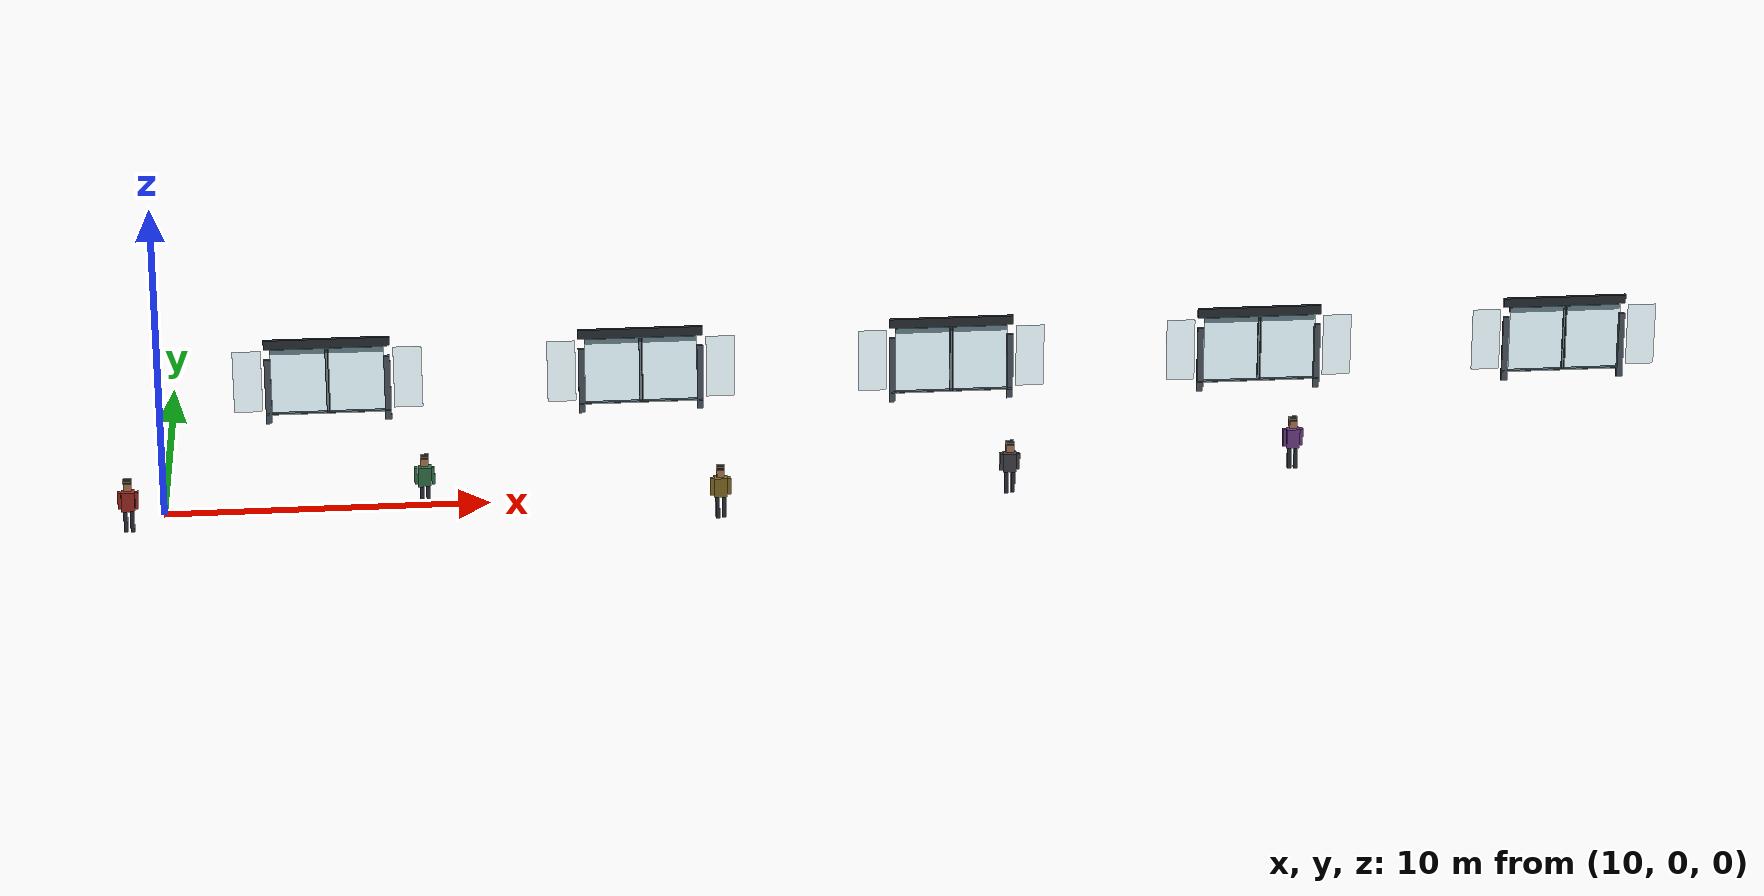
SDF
<sdf version="1.8">
 <world name="metro_station">
  <model name="psd_unit_08">
   <static>true</static>
   <pose>15.0 0 0 0 0 0</pose>
   <link name="psd_frame_08">
    <collision name="psd_post_left_col_08">
     <pose>-1.90 7.02 1.10 0 0 0</pose>
     <geometry><box><size>0.20 0.10 2.20</size></box></geometry>
    </collision>
    <collision name="psd_post_right_col_08">
     <pose>1.90 7.02 1.10 0 0 0</pose>
     <geometry><box><size>0.20 0.10 2.20</size></box></geometry>
    </collision>
    <collision name="psd_header_col_08">
     <pose>0 7.02 2.70 0 0 0</pose>
     <geometry><box><size>4.00 0.10 0.30</size></box></geometry>
    </collision>
    <collision name="psd_threshold_col_08">
     <pose>0 7.02 0.325 0 0 0</pose>
     <geometry><box><size>4.00 0.10 0.05</size></box></geometry>
    </collision>
    <visual name="psd_post_left_vis_08">
     <pose>-1.90 7.02 1.10 0 0 0</pose>
     <geometry><box><size>0.20 0.10 2.20</size></box></geometry>
     <material>
      <ambient>0.22 0.25 0.28 1</ambient>
      <diffuse>0.30 0.34 0.38 1</diffuse>
      <specular>0.35 0.35 0.35 1</specular>
     </material>
    </visual>
    <visual name="psd_post_right_vis_08">
     <pose>1.90 7.02 1.10 0 0 0</pose>
     <geometry><box><size>0.20 0.10 2.20</size></box></geometry>
     <material>
      <ambient>0.22 0.25 0.28 1</ambient>
      <diffuse>0.30 0.34 0.38 1</diffuse>
      <specular>0.35 0.35 0.35 1</specular>
     </material>
    </visual>
    <visual name="psd_header_vis_08">
     <pose>0 7.02 2.70 0 0 0</pose>
     <geometry><box><size>4.00 0.10 0.30</size></box></geometry>
     <material><ambient>0.10 0.12 0.14 1</ambient><diffuse>0.16 0.18 0.20 1</diffuse></material>
    </visual>
    <visual name="psd_threshold_vis_08">
     <pose>0 7.02 0.325 0 0 0</pose>
     <geometry><box><size>4.00 0.10 0.05</size></box></geometry>
     <material>
      <ambient>0.22 0.25 0.28 1</ambient>
      <diffuse>0.30 0.34 0.38 1</diffuse>
      <specular>0.35 0.35 0.35 1</specular>
     </material>
    </visual>
    <visual name="psd_glass_left_vis_08">
     <pose>-2.55 7.02 1.45 0 0 0</pose>
     <transparency>0.65</transparency>
     <geometry><box><size>0.90 0.05 2.05</size></box></geometry>
     <material><ambient>0.55 0.75 0.82 1</ambient><diffuse>0.65 0.85 0.92 1</diffuse></material>
    </visual>
    <visual name="psd_glass_right_vis_08">
     <pose>2.55 7.02 1.45 0 0 0</pose>
     <transparency>0.65</transparency>
     <geometry><box><size>0.90 0.05 2.05</size></box></geometry>
     <material><ambient>0.55 0.75 0.82 1</ambient><diffuse>0.65 0.85 0.92 1</diffuse></material>
    </visual>
    <visual name="psd_unit_label_vis_08">
     <pose>0 7.10 2.70 0 0 0</pose>
     <geometry><box><size>0.30 0.02 0.16</size></box></geometry>
     <material>
      <ambient>0.95 0.72 0.04 1</ambient>
      <diffuse>0.98 0.78 0.08 1</diffuse>
      <emissive>0.35 0.25 0.02 1</emissive>
     </material>
    </visual>
    <visual name="psd_upper_panel_vis_08">
     <pose>0 7.02 2.46 0 0 0</pose>
     <geometry><box><size>3.60 0.06 0.18</size></box></geometry>
     <material>
      <ambient>0.22 0.25 0.28 1</ambient>
      <diffuse>0.30 0.34 0.38 1</diffuse>
      <specular>0.35 0.35 0.35 1</specular>
     </material>
    </visual>
   </link>
  </model>
  <model name="psd_unit_09">
   <static>true</static>
   <pose>25.0 0 0 0 0 0</pose>
   <link name="psd_frame_09">
    <collision name="psd_post_left_col_09">
     <pose>-1.90 7.02 1.10 0 0 0</pose>
     <geometry><box><size>0.20 0.10 2.20</size></box></geometry>
    </collision>
    <collision name="psd_post_right_col_09">
     <pose>1.90 7.02 1.10 0 0 0</pose>
     <geometry><box><size>0.20 0.10 2.20</size></box></geometry>
    </collision>
    <collision name="psd_header_col_09">
     <pose>0 7.02 2.70 0 0 0</pose>
     <geometry><box><size>4.00 0.10 0.30</size></box></geometry>
    </collision>
    <collision name="psd_threshold_col_09">
     <pose>0 7.02 0.325 0 0 0</pose>
     <geometry><box><size>4.00 0.10 0.05</size></box></geometry>
    </collision>
    <visual name="psd_post_left_vis_09">
     <pose>-1.90 7.02 1.10 0 0 0</pose>
     <geometry><box><size>0.20 0.10 2.20</size></box></geometry>
     <material>
      <ambient>0.22 0.25 0.28 1</ambient>
      <diffuse>0.30 0.34 0.38 1</diffuse>
      <specular>0.35 0.35 0.35 1</specular>
     </material>
    </visual>
    <visual name="psd_post_right_vis_09">
     <pose>1.90 7.02 1.10 0 0 0</pose>
     <geometry><box><size>0.20 0.10 2.20</size></box></geometry>
     <material>
      <ambient>0.22 0.25 0.28 1</ambient>
      <diffuse>0.30 0.34 0.38 1</diffuse>
      <specular>0.35 0.35 0.35 1</specular>
     </material>
    </visual>
    <visual name="psd_header_vis_09">
     <pose>0 7.02 2.70 0 0 0</pose>
     <geometry><box><size>4.00 0.10 0.30</size></box></geometry>
     <material><ambient>0.10 0.12 0.14 1</ambient><diffuse>0.16 0.18 0.20 1</diffuse></material>
    </visual>
    <visual name="psd_threshold_vis_09">
     <pose>0 7.02 0.325 0 0 0</pose>
     <geometry><box><size>4.00 0.10 0.05</size></box></geometry>
     <material>
      <ambient>0.22 0.25 0.28 1</ambient>
      <diffuse>0.30 0.34 0.38 1</diffuse>
      <specular>0.35 0.35 0.35 1</specular>
     </material>
    </visual>
    <visual name="psd_glass_left_vis_09">
     <pose>-2.55 7.02 1.45 0 0 0</pose>
     <transparency>0.65</transparency>
     <geometry><box><size>0.90 0.05 2.05</size></box></geometry>
     <material><ambient>0.55 0.75 0.82 1</ambient><diffuse>0.65 0.85 0.92 1</diffuse></material>
    </visual>
    <visual name="psd_glass_right_vis_09">
     <pose>2.55 7.02 1.45 0 0 0</pose>
     <transparency>0.65</transparency>
     <geometry><box><size>0.90 0.05 2.05</size></box></geometry>
     <material><ambient>0.55 0.75 0.82 1</ambient><diffuse>0.65 0.85 0.92 1</diffuse></material>
    </visual>
    <visual name="psd_unit_label_vis_09">
     <pose>0 7.10 2.70 0 0 0</pose>
     <geometry><box><size>0.30 0.02 0.16</size></box></geometry>
     <material>
      <ambient>0.95 0.72 0.04 1</ambient>
      <diffuse>0.98 0.78 0.08 1</diffuse>
      <emissive>0.35 0.25 0.02 1</emissive>
     </material>
    </visual>
    <visual name="psd_upper_panel_vis_09">
     <pose>0 7.02 2.46 0 0 0</pose>
     <geometry><box><size>3.60 0.06 0.18</size></box></geometry>
     <material>
      <ambient>0.22 0.25 0.28 1</ambient>
      <diffuse>0.30 0.34 0.38 1</diffuse>
      <specular>0.35 0.35 0.35 1</specular>
     </material>
    </visual>
   </link>
  </model>
  <model name="psd_unit_10">
   <static>true</static>
   <pose>35.0 0 0 0 0 0</pose>
   <link name="psd_frame_10">
    <collision name="psd_post_left_col_10">
     <pose>-1.90 7.02 1.10 0 0 0</pose>
     <geometry><box><size>0.20 0.10 2.20</size></box></geometry>
    </collision>
    <collision name="psd_post_right_col_10">
     <pose>1.90 7.02 1.10 0 0 0</pose>
     <geometry><box><size>0.20 0.10 2.20</size></box></geometry>
    </collision>
    <collision name="psd_header_col_10">
     <pose>0 7.02 2.70 0 0 0</pose>
     <geometry><box><size>4.00 0.10 0.30</size></box></geometry>
    </collision>
    <collision name="psd_threshold_col_10">
     <pose>0 7.02 0.325 0 0 0</pose>
     <geometry><box><size>4.00 0.10 0.05</size></box></geometry>
    </collision>
    <visual name="psd_post_left_vis_10">
     <pose>-1.90 7.02 1.10 0 0 0</pose>
     <geometry><box><size>0.20 0.10 2.20</size></box></geometry>
     <material>
      <ambient>0.22 0.25 0.28 1</ambient>
      <diffuse>0.30 0.34 0.38 1</diffuse>
      <specular>0.35 0.35 0.35 1</specular>
     </material>
    </visual>
    <visual name="psd_post_right_vis_10">
     <pose>1.90 7.02 1.10 0 0 0</pose>
     <geometry><box><size>0.20 0.10 2.20</size></box></geometry>
     <material>
      <ambient>0.22 0.25 0.28 1</ambient>
      <diffuse>0.30 0.34 0.38 1</diffuse>
      <specular>0.35 0.35 0.35 1</specular>
     </material>
    </visual>
    <visual name="psd_header_vis_10">
     <pose>0 7.02 2.70 0 0 0</pose>
     <geometry><box><size>4.00 0.10 0.30</size></box></geometry>
     <material><ambient>0.10 0.12 0.14 1</ambient><diffuse>0.16 0.18 0.20 1</diffuse></material>
    </visual>
    <visual name="psd_threshold_vis_10">
     <pose>0 7.02 0.325 0 0 0</pose>
     <geometry><box><size>4.00 0.10 0.05</size></box></geometry>
     <material>
      <ambient>0.22 0.25 0.28 1</ambient>
      <diffuse>0.30 0.34 0.38 1</diffuse>
      <specular>0.35 0.35 0.35 1</specular>
     </material>
    </visual>
    <visual name="psd_glass_left_vis_10">
     <pose>-2.55 7.02 1.45 0 0 0</pose>
     <transparency>0.65</transparency>
     <geometry><box><size>0.90 0.05 2.05</size></box></geometry>
     <material><ambient>0.55 0.75 0.82 1</ambient><diffuse>0.65 0.85 0.92 1</diffuse></material>
    </visual>
    <visual name="psd_glass_right_vis_10">
     <pose>2.55 7.02 1.45 0 0 0</pose>
     <transparency>0.65</transparency>
     <geometry><box><size>0.90 0.05 2.05</size></box></geometry>
     <material><ambient>0.55 0.75 0.82 1</ambient><diffuse>0.65 0.85 0.92 1</diffuse></material>
    </visual>
    <visual name="psd_unit_label_vis_10">
     <pose>0 7.10 2.70 0 0 0</pose>
     <geometry><box><size>0.30 0.02 0.16</size></box></geometry>
     <material>
      <ambient>0.95 0.72 0.04 1</ambient>
      <diffuse>0.98 0.78 0.08 1</diffuse>
      <emissive>0.35 0.25 0.02 1</emissive>
     </material>
    </visual>
    <visual name="psd_upper_panel_vis_10">
     <pose>0 7.02 2.46 0 0 0</pose>
     <geometry><box><size>3.60 0.06 0.18</size></box></geometry>
     <material>
      <ambient>0.22 0.25 0.28 1</ambient>
      <diffuse>0.30 0.34 0.38 1</diffuse>
      <specular>0.35 0.35 0.35 1</specular>
     </material>
    </visual>
   </link>
  </model>
  <model name="psd_unit_11">
   <static>true</static>
   <pose>45.0 0 0 0 0 0</pose>
   <link name="psd_frame_11">
    <collision name="psd_post_left_col_11">
     <pose>-1.90 7.02 1.10 0 0 0</pose>
     <geometry><box><size>0.20 0.10 2.20</size></box></geometry>
    </collision>
    <collision name="psd_post_right_col_11">
     <pose>1.90 7.02 1.10 0 0 0</pose>
     <geometry><box><size>0.20 0.10 2.20</size></box></geometry>
    </collision>
    <collision name="psd_header_col_11">
     <pose>0 7.02 2.70 0 0 0</pose>
     <geometry><box><size>4.00 0.10 0.30</size></box></geometry>
    </collision>
    <collision name="psd_threshold_col_11">
     <pose>0 7.02 0.325 0 0 0</pose>
     <geometry><box><size>4.00 0.10 0.05</size></box></geometry>
    </collision>
    <visual name="psd_post_left_vis_11">
     <pose>-1.90 7.02 1.10 0 0 0</pose>
     <geometry><box><size>0.20 0.10 2.20</size></box></geometry>
     <material>
      <ambient>0.22 0.25 0.28 1</ambient>
      <diffuse>0.30 0.34 0.38 1</diffuse>
      <specular>0.35 0.35 0.35 1</specular>
     </material>
    </visual>
    <visual name="psd_post_right_vis_11">
     <pose>1.90 7.02 1.10 0 0 0</pose>
     <geometry><box><size>0.20 0.10 2.20</size></box></geometry>
     <material>
      <ambient>0.22 0.25 0.28 1</ambient>
      <diffuse>0.30 0.34 0.38 1</diffuse>
      <specular>0.35 0.35 0.35 1</specular>
     </material>
    </visual>
    <visual name="psd_header_vis_11">
     <pose>0 7.02 2.70 0 0 0</pose>
     <geometry><box><size>4.00 0.10 0.30</size></box></geometry>
     <material><ambient>0.10 0.12 0.14 1</ambient><diffuse>0.16 0.18 0.20 1</diffuse></material>
    </visual>
    <visual name="psd_threshold_vis_11">
     <pose>0 7.02 0.325 0 0 0</pose>
     <geometry><box><size>4.00 0.10 0.05</size></box></geometry>
     <material>
      <ambient>0.22 0.25 0.28 1</ambient>
      <diffuse>0.30 0.34 0.38 1</diffuse>
      <specular>0.35 0.35 0.35 1</specular>
     </material>
    </visual>
    <visual name="psd_glass_left_vis_11">
     <pose>-2.55 7.02 1.45 0 0 0</pose>
     <transparency>0.65</transparency>
     <geometry><box><size>0.90 0.05 2.05</size></box></geometry>
     <material><ambient>0.55 0.75 0.82 1</ambient><diffuse>0.65 0.85 0.92 1</diffuse></material>
    </visual>
    <visual name="psd_glass_right_vis_11">
     <pose>2.55 7.02 1.45 0 0 0</pose>
     <transparency>0.65</transparency>
     <geometry><box><size>0.90 0.05 2.05</size></box></geometry>
     <material><ambient>0.55 0.75 0.82 1</ambient><diffuse>0.65 0.85 0.92 1</diffuse></material>
    </visual>
    <visual name="psd_unit_label_vis_11">
     <pose>0 7.10 2.70 0 0 0</pose>
     <geometry><box><size>0.30 0.02 0.16</size></box></geometry>
     <material>
      <ambient>0.95 0.72 0.04 1</ambient>
      <diffuse>0.98 0.78 0.08 1</diffuse>
      <emissive>0.35 0.25 0.02 1</emissive>
     </material>
    </visual>
    <visual name="psd_upper_panel_vis_11">
     <pose>0 7.02 2.46 0 0 0</pose>
     <geometry><box><size>3.60 0.06 0.18</size></box></geometry>
     <material>
      <ambient>0.22 0.25 0.28 1</ambient>
      <diffuse>0.30 0.34 0.38 1</diffuse>
      <specular>0.35 0.35 0.35 1</specular>
     </material>
    </visual>
   </link>
  </model>
  <model name="psd_unit_12">
   <static>true</static>
   <pose>55.0 0 0 0 0 0</pose>
   <link name="psd_frame_12">
    <collision name="psd_post_left_col_12">
     <pose>-1.90 7.02 1.10 0 0 0</pose>
     <geometry><box><size>0.20 0.10 2.20</size></box></geometry>
    </collision>
    <collision name="psd_post_right_col_12">
     <pose>1.90 7.02 1.10 0 0 0</pose>
     <geometry><box><size>0.20 0.10 2.20</size></box></geometry>
    </collision>
    <collision name="psd_header_col_12">
     <pose>0 7.02 2.70 0 0 0</pose>
     <geometry><box><size>4.00 0.10 0.30</size></box></geometry>
    </collision>
    <collision name="psd_threshold_col_12">
     <pose>0 7.02 0.325 0 0 0</pose>
     <geometry><box><size>4.00 0.10 0.05</size></box></geometry>
    </collision>
    <visual name="psd_post_left_vis_12">
     <pose>-1.90 7.02 1.10 0 0 0</pose>
     <geometry><box><size>0.20 0.10 2.20</size></box></geometry>
     <material>
      <ambient>0.22 0.25 0.28 1</ambient>
      <diffuse>0.30 0.34 0.38 1</diffuse>
      <specular>0.35 0.35 0.35 1</specular>
     </material>
    </visual>
    <visual name="psd_post_right_vis_12">
     <pose>1.90 7.02 1.10 0 0 0</pose>
     <geometry><box><size>0.20 0.10 2.20</size></box></geometry>
     <material>
      <ambient>0.22 0.25 0.28 1</ambient>
      <diffuse>0.30 0.34 0.38 1</diffuse>
      <specular>0.35 0.35 0.35 1</specular>
     </material>
    </visual>
    <visual name="psd_header_vis_12">
     <pose>0 7.02 2.70 0 0 0</pose>
     <geometry><box><size>4.00 0.10 0.30</size></box></geometry>
     <material><ambient>0.10 0.12 0.14 1</ambient><diffuse>0.16 0.18 0.20 1</diffuse></material>
    </visual>
    <visual name="psd_threshold_vis_12">
     <pose>0 7.02 0.325 0 0 0</pose>
     <geometry><box><size>4.00 0.10 0.05</size></box></geometry>
     <material>
      <ambient>0.22 0.25 0.28 1</ambient>
      <diffuse>0.30 0.34 0.38 1</diffuse>
      <specular>0.35 0.35 0.35 1</specular>
     </material>
    </visual>
    <visual name="psd_glass_left_vis_12">
     <pose>-2.55 7.02 1.45 0 0 0</pose>
     <transparency>0.65</transparency>
     <geometry><box><size>0.90 0.05 2.05</size></box></geometry>
     <material><ambient>0.55 0.75 0.82 1</ambient><diffuse>0.65 0.85 0.92 1</diffuse></material>
    </visual>
    <visual name="psd_glass_right_vis_12">
     <pose>2.55 7.02 1.45 0 0 0</pose>
     <transparency>0.65</transparency>
     <geometry><box><size>0.90 0.05 2.05</size></box></geometry>
     <material><ambient>0.55 0.75 0.82 1</ambient><diffuse>0.65 0.85 0.92 1</diffuse></material>
    </visual>
    <visual name="psd_unit_label_vis_12">
     <pose>0 7.10 2.70 0 0 0</pose>
     <geometry><box><size>0.30 0.02 0.16</size></box></geometry>
     <material>
      <ambient>0.95 0.72 0.04 1</ambient>
      <diffuse>0.98 0.78 0.08 1</diffuse>
      <emissive>0.35 0.25 0.02 1</emissive>
     </material>
    </visual>
    <visual name="psd_upper_panel_vis_12">
     <pose>0 7.02 2.46 0 0 0</pose>
     <geometry><box><size>3.60 0.06 0.18</size></box></geometry>
     <material>
      <ambient>0.22 0.25 0.28 1</ambient>
      <diffuse>0.30 0.34 0.38 1</diffuse>
      <specular>0.35 0.35 0.35 1</specular>
     </material>
    </visual>
   </link>
  </model>
  <model name="psd_door_08">
   <static>false</static>
   <allow_auto_disable>false</allow_auto_disable>
   <pose>15.0 0 0 0 0 0</pose>
   <link name="psd_base_08">
    <inertial>
     <mass>1.0</mass>
     <inertia><ixx>0.001</ixx><ixy>0</ixy><ixz>0</ixz><iyy>0.001</iyy><iyz>0</iyz><izz>0.001</izz></inertia>
    </inertial>
   </link>
   <link name="psd_left_08">
    <pose>-0.90 6.90 1.45 0 0 0</pose>
    <inertial>
     <mass>120.0</mass>
     <inertia><ixx>48.436</ixx><ixy>0</ixy><ixz>0</ixz><iyy>80.800</iyy><iyz>0</iyz><izz>32.436</izz></inertia>
    </inertial>
    <collision name="psd_left_col_08"><geometry><box><size>1.80 0.06 2.20</size></box></geometry></collision>
    <visual name="psd_left_vis_08">
     <transparency>0.6</transparency>
     <geometry><box><size>1.80 0.06 2.20</size></box></geometry>
     <material><ambient>0.55 0.78 0.85 1</ambient><diffuse>0.65 0.88 0.95 1</diffuse></material>
    </visual>
    <visual name="psd_left_edge_vis_08">
     <pose>0.86 0 0 0 0 0</pose>
     <geometry><box><size>0.03 0.08 2.20</size></box></geometry>
     <material><ambient>0.15 0.18 0.20 1</ambient><diffuse>0.22 0.25 0.28 1</diffuse></material>
    </visual>
   </link>
   <link name="psd_right_08">
    <pose>0.90 6.90 1.45 0 0 0</pose>
    <inertial>
     <mass>120.0</mass>
     <inertia><ixx>48.436</ixx><ixy>0</ixy><ixz>0</ixz><iyy>80.800</iyy><iyz>0</iyz><izz>32.436</izz></inertia>
    </inertial>
    <collision name="psd_right_col_08"><geometry><box><size>1.80 0.06 2.20</size></box></geometry></collision>
    <visual name="psd_right_vis_08">
     <transparency>0.6</transparency>
     <geometry><box><size>1.80 0.06 2.20</size></box></geometry>
     <material><ambient>0.55 0.78 0.85 1</ambient><diffuse>0.65 0.88 0.95 1</diffuse></material>
    </visual>
    <visual name="psd_right_edge_vis_08">
     <pose>-0.86 0 0 0 0 0</pose>
     <geometry><box><size>0.03 0.08 2.20</size></box></geometry>
     <material><ambient>0.15 0.18 0.20 1</ambient><diffuse>0.22 0.25 0.28 1</diffuse></material>
    </visual>
   </link>
   <joint name="psd_base_fixed_08" type="fixed"><parent>world</parent><child>psd_base_08</child></joint>
   <joint name="psd_left_joint_08" type="prismatic">
    <parent>psd_base_08</parent>
    <child>psd_left_08</child>
    <axis>
     <xyz>1 0 0</xyz>
     <limit><lower>-1.80</lower><upper>0.0</upper><effort>5000.0</effort><velocity>1.0</velocity></limit>
     <dynamics><damping>2.0</damping><friction>0.2</friction></dynamics>
    </axis>
   </joint>
   <joint name="psd_right_joint_08" type="prismatic">
    <parent>psd_base_08</parent>
    <child>psd_right_08</child>
    <axis>
     <xyz>1 0 0</xyz>
     <limit><lower>0.0</lower><upper>1.80</upper><effort>5000.0</effort><velocity>1.0</velocity></limit>
     <dynamics><damping>2.0</damping><friction>0.2</friction></dynamics>
    </axis>
   </joint>
  </model>
  <model name="psd_door_09">
   <static>false</static>
   <allow_auto_disable>false</allow_auto_disable>
   <pose>25.0 0 0 0 0 0</pose>
   <link name="psd_base_09">
    <inertial>
     <mass>1.0</mass>
     <inertia><ixx>0.001</ixx><ixy>0</ixy><ixz>0</ixz><iyy>0.001</iyy><iyz>0</iyz><izz>0.001</izz></inertia>
    </inertial>
   </link>
   <link name="psd_left_09">
    <pose>-0.90 6.90 1.45 0 0 0</pose>
    <inertial>
     <mass>120.0</mass>
     <inertia><ixx>48.436</ixx><ixy>0</ixy><ixz>0</ixz><iyy>80.800</iyy><iyz>0</iyz><izz>32.436</izz></inertia>
    </inertial>
    <collision name="psd_left_col_09"><geometry><box><size>1.80 0.06 2.20</size></box></geometry></collision>
    <visual name="psd_left_vis_09">
     <transparency>0.6</transparency>
     <geometry><box><size>1.80 0.06 2.20</size></box></geometry>
     <material><ambient>0.55 0.78 0.85 1</ambient><diffuse>0.65 0.88 0.95 1</diffuse></material>
    </visual>
    <visual name="psd_left_edge_vis_09">
     <pose>0.86 0 0 0 0 0</pose>
     <geometry><box><size>0.03 0.08 2.20</size></box></geometry>
     <material><ambient>0.15 0.18 0.20 1</ambient><diffuse>0.22 0.25 0.28 1</diffuse></material>
    </visual>
   </link>
   <link name="psd_right_09">
    <pose>0.90 6.90 1.45 0 0 0</pose>
    <inertial>
     <mass>120.0</mass>
     <inertia><ixx>48.436</ixx><ixy>0</ixy><ixz>0</ixz><iyy>80.800</iyy><iyz>0</iyz><izz>32.436</izz></inertia>
    </inertial>
    <collision name="psd_right_col_09"><geometry><box><size>1.80 0.06 2.20</size></box></geometry></collision>
    <visual name="psd_right_vis_09">
     <transparency>0.6</transparency>
     <geometry><box><size>1.80 0.06 2.20</size></box></geometry>
     <material><ambient>0.55 0.78 0.85 1</ambient><diffuse>0.65 0.88 0.95 1</diffuse></material>
    </visual>
    <visual name="psd_right_edge_vis_09">
     <pose>-0.86 0 0 0 0 0</pose>
     <geometry><box><size>0.03 0.08 2.20</size></box></geometry>
     <material><ambient>0.15 0.18 0.20 1</ambient><diffuse>0.22 0.25 0.28 1</diffuse></material>
    </visual>
   </link>
   <joint name="psd_base_fixed_09" type="fixed"><parent>world</parent><child>psd_base_09</child></joint>
   <joint name="psd_left_joint_09" type="prismatic">
    <parent>psd_base_09</parent>
    <child>psd_left_09</child>
    <axis>
     <xyz>1 0 0</xyz>
     <limit><lower>-1.80</lower><upper>0.0</upper><effort>5000.0</effort><velocity>1.0</velocity></limit>
     <dynamics><damping>2.0</damping><friction>0.2</friction></dynamics>
    </axis>
   </joint>
   <joint name="psd_right_joint_09" type="prismatic">
    <parent>psd_base_09</parent>
    <child>psd_right_09</child>
    <axis>
     <xyz>1 0 0</xyz>
     <limit><lower>0.0</lower><upper>1.80</upper><effort>5000.0</effort><velocity>1.0</velocity></limit>
     <dynamics><damping>2.0</damping><friction>0.2</friction></dynamics>
    </axis>
   </joint>
  </model>
  <model name="psd_door_10">
   <static>false</static>
   <allow_auto_disable>false</allow_auto_disable>
   <pose>35.0 0 0 0 0 0</pose>
   <link name="psd_base_10">
    <inertial>
     <mass>1.0</mass>
     <inertia><ixx>0.001</ixx><ixy>0</ixy><ixz>0</ixz><iyy>0.001</iyy><iyz>0</iyz><izz>0.001</izz></inertia>
    </inertial>
   </link>
   <link name="psd_left_10">
    <pose>-0.90 6.90 1.45 0 0 0</pose>
    <inertial>
     <mass>120.0</mass>
     <inertia><ixx>48.436</ixx><ixy>0</ixy><ixz>0</ixz><iyy>80.800</iyy><iyz>0</iyz><izz>32.436</izz></inertia>
    </inertial>
    <collision name="psd_left_col_10"><geometry><box><size>1.80 0.06 2.20</size></box></geometry></collision>
    <visual name="psd_left_vis_10">
     <transparency>0.6</transparency>
     <geometry><box><size>1.80 0.06 2.20</size></box></geometry>
     <material><ambient>0.55 0.78 0.85 1</ambient><diffuse>0.65 0.88 0.95 1</diffuse></material>
    </visual>
    <visual name="psd_left_edge_vis_10">
     <pose>0.86 0 0 0 0 0</pose>
     <geometry><box><size>0.03 0.08 2.20</size></box></geometry>
     <material><ambient>0.15 0.18 0.20 1</ambient><diffuse>0.22 0.25 0.28 1</diffuse></material>
    </visual>
   </link>
   <link name="psd_right_10">
    <pose>0.90 6.90 1.45 0 0 0</pose>
    <inertial>
     <mass>120.0</mass>
     <inertia><ixx>48.436</ixx><ixy>0</ixy><ixz>0</ixz><iyy>80.800</iyy><iyz>0</iyz><izz>32.436</izz></inertia>
    </inertial>
    <collision name="psd_right_col_10"><geometry><box><size>1.80 0.06 2.20</size></box></geometry></collision>
    <visual name="psd_right_vis_10">
     <transparency>0.6</transparency>
     <geometry><box><size>1.80 0.06 2.20</size></box></geometry>
     <material><ambient>0.55 0.78 0.85 1</ambient><diffuse>0.65 0.88 0.95 1</diffuse></material>
    </visual>
    <visual name="psd_right_edge_vis_10">
     <pose>-0.86 0 0 0 0 0</pose>
     <geometry><box><size>0.03 0.08 2.20</size></box></geometry>
     <material><ambient>0.15 0.18 0.20 1</ambient><diffuse>0.22 0.25 0.28 1</diffuse></material>
    </visual>
   </link>
   <joint name="psd_base_fixed_10" type="fixed"><parent>world</parent><child>psd_base_10</child></joint>
   <joint name="psd_left_joint_10" type="prismatic">
    <parent>psd_base_10</parent>
    <child>psd_left_10</child>
    <axis>
     <xyz>1 0 0</xyz>
     <limit><lower>-1.80</lower><upper>0.0</upper><effort>5000.0</effort><velocity>1.0</velocity></limit>
     <dynamics><damping>2.0</damping><friction>0.2</friction></dynamics>
    </axis>
   </joint>
   <joint name="psd_right_joint_10" type="prismatic">
    <parent>psd_base_10</parent>
    <child>psd_right_10</child>
    <axis>
     <xyz>1 0 0</xyz>
     <limit><lower>0.0</lower><upper>1.80</upper><effort>5000.0</effort><velocity>1.0</velocity></limit>
     <dynamics><damping>2.0</damping><friction>0.2</friction></dynamics>
    </axis>
   </joint>
  </model>
  <model name="psd_door_11">
   <static>false</static>
   <allow_auto_disable>false</allow_auto_disable>
   <pose>45.0 0 0 0 0 0</pose>
   <link name="psd_base_11">
    <inertial>
     <mass>1.0</mass>
     <inertia><ixx>0.001</ixx><ixy>0</ixy><ixz>0</ixz><iyy>0.001</iyy><iyz>0</iyz><izz>0.001</izz></inertia>
    </inertial>
   </link>
   <link name="psd_left_11">
    <pose>-0.90 6.90 1.45 0 0 0</pose>
    <inertial>
     <mass>120.0</mass>
     <inertia><ixx>48.436</ixx><ixy>0</ixy><ixz>0</ixz><iyy>80.800</iyy><iyz>0</iyz><izz>32.436</izz></inertia>
    </inertial>
    <collision name="psd_left_col_11"><geometry><box><size>1.80 0.06 2.20</size></box></geometry></collision>
    <visual name="psd_left_vis_11">
     <transparency>0.6</transparency>
     <geometry><box><size>1.80 0.06 2.20</size></box></geometry>
     <material><ambient>0.55 0.78 0.85 1</ambient><diffuse>0.65 0.88 0.95 1</diffuse></material>
    </visual>
    <visual name="psd_left_edge_vis_11">
     <pose>0.86 0 0 0 0 0</pose>
     <geometry><box><size>0.03 0.08 2.20</size></box></geometry>
     <material><ambient>0.15 0.18 0.20 1</ambient><diffuse>0.22 0.25 0.28 1</diffuse></material>
    </visual>
   </link>
   <link name="psd_right_11">
    <pose>0.90 6.90 1.45 0 0 0</pose>
    <inertial>
     <mass>120.0</mass>
     <inertia><ixx>48.436</ixx><ixy>0</ixy><ixz>0</ixz><iyy>80.800</iyy><iyz>0</iyz><izz>32.436</izz></inertia>
    </inertial>
    <collision name="psd_right_col_11"><geometry><box><size>1.80 0.06 2.20</size></box></geometry></collision>
    <visual name="psd_right_vis_11">
     <transparency>0.6</transparency>
     <geometry><box><size>1.80 0.06 2.20</size></box></geometry>
     <material><ambient>0.55 0.78 0.85 1</ambient><diffuse>0.65 0.88 0.95 1</diffuse></material>
    </visual>
    <visual name="psd_right_edge_vis_11">
     <pose>-0.86 0 0 0 0 0</pose>
     <geometry><box><size>0.03 0.08 2.20</size></box></geometry>
     <material><ambient>0.15 0.18 0.20 1</ambient><diffuse>0.22 0.25 0.28 1</diffuse></material>
    </visual>
   </link>
   <joint name="psd_base_fixed_11" type="fixed"><parent>world</parent><child>psd_base_11</child></joint>
   <joint name="psd_left_joint_11" type="prismatic">
    <parent>psd_base_11</parent>
    <child>psd_left_11</child>
    <axis>
     <xyz>1 0 0</xyz>
     <limit><lower>-1.80</lower><upper>0.0</upper><effort>5000.0</effort><velocity>1.0</velocity></limit>
     <dynamics><damping>2.0</damping><friction>0.2</friction></dynamics>
    </axis>
   </joint>
   <joint name="psd_right_joint_11" type="prismatic">
    <parent>psd_base_11</parent>
    <child>psd_right_11</child>
    <axis>
     <xyz>1 0 0</xyz>
     <limit><lower>0.0</lower><upper>1.80</upper><effort>5000.0</effort><velocity>1.0</velocity></limit>
     <dynamics><damping>2.0</damping><friction>0.2</friction></dynamics>
    </axis>
   </joint>
  </model>
  <model name="psd_door_12">
   <static>false</static>
   <allow_auto_disable>false</allow_auto_disable>
   <pose>55.0 0 0 0 0 0</pose>
   <link name="psd_base_12">
    <inertial>
     <mass>1.0</mass>
     <inertia><ixx>0.001</ixx><ixy>0</ixy><ixz>0</ixz><iyy>0.001</iyy><iyz>0</iyz><izz>0.001</izz></inertia>
    </inertial>
   </link>
   <link name="psd_left_12">
    <pose>-0.90 6.90 1.45 0 0 0</pose>
    <inertial>
     <mass>120.0</mass>
     <inertia><ixx>48.436</ixx><ixy>0</ixy><ixz>0</ixz><iyy>80.800</iyy><iyz>0</iyz><izz>32.436</izz></inertia>
    </inertial>
    <collision name="psd_left_col_12"><geometry><box><size>1.80 0.06 2.20</size></box></geometry></collision>
    <visual name="psd_left_vis_12">
     <transparency>0.6</transparency>
     <geometry><box><size>1.80 0.06 2.20</size></box></geometry>
     <material><ambient>0.55 0.78 0.85 1</ambient><diffuse>0.65 0.88 0.95 1</diffuse></material>
    </visual>
    <visual name="psd_left_edge_vis_12">
     <pose>0.86 0 0 0 0 0</pose>
     <geometry><box><size>0.03 0.08 2.20</size></box></geometry>
     <material><ambient>0.15 0.18 0.20 1</ambient><diffuse>0.22 0.25 0.28 1</diffuse></material>
    </visual>
   </link>
   <link name="psd_right_12">
    <pose>0.90 6.90 1.45 0 0 0</pose>
    <inertial>
     <mass>120.0</mass>
     <inertia><ixx>48.436</ixx><ixy>0</ixy><ixz>0</ixz><iyy>80.800</iyy><iyz>0</iyz><izz>32.436</izz></inertia>
    </inertial>
    <collision name="psd_right_col_12"><geometry><box><size>1.80 0.06 2.20</size></box></geometry></collision>
    <visual name="psd_right_vis_12">
     <transparency>0.6</transparency>
     <geometry><box><size>1.80 0.06 2.20</size></box></geometry>
     <material><ambient>0.55 0.78 0.85 1</ambient><diffuse>0.65 0.88 0.95 1</diffuse></material>
    </visual>
    <visual name="psd_right_edge_vis_12">
     <pose>-0.86 0 0 0 0 0</pose>
     <geometry><box><size>0.03 0.08 2.20</size></box></geometry>
     <material><ambient>0.15 0.18 0.20 1</ambient><diffuse>0.22 0.25 0.28 1</diffuse></material>
    </visual>
   </link>
   <joint name="psd_base_fixed_12" type="fixed"><parent>world</parent><child>psd_base_12</child></joint>
   <joint name="psd_left_joint_12" type="prismatic">
    <parent>psd_base_12</parent>
    <child>psd_left_12</child>
    <axis>
     <xyz>1 0 0</xyz>
     <limit><lower>-1.80</lower><upper>0.0</upper><effort>5000.0</effort><velocity>1.0</velocity></limit>
     <dynamics><damping>2.0</damping><friction>0.2</friction></dynamics>
    </axis>
   </joint>
   <joint name="psd_right_joint_12" type="prismatic">
    <parent>psd_base_12</parent>
    <child>psd_right_12</child>
    <axis>
     <xyz>1 0 0</xyz>
     <limit><lower>0.0</lower><upper>1.80</upper><effort>5000.0</effort><velocity>1.0</velocity></limit>
     <dynamics><damping>2.0</damping><friction>0.2</friction></dynamics>
    </axis>
   </joint>
  </model>
  <model name="passenger_08">
   <static>true</static>
   <allow_auto_disable>false</allow_auto_disable>
   <pose>9.0 -1.85 0.30 0 0 0</pose>
   <link name="passenger_body_08">
    <visual name="leg_left_08">
     <pose>-0.10 0 0.36 0 0 0</pose>
     <geometry><box><size>0.12 0.13 0.72</size></box></geometry>
     <material><ambient>0.10 0.12 0.16 1</ambient><diffuse>0.16 0.18 0.22 1</diffuse></material>
    </visual>
    <visual name="leg_right_08">
     <pose>0.10 0 0.36 0 0 0</pose>
     <geometry><box><size>0.12 0.13 0.72</size></box></geometry>
     <material><ambient>0.10 0.12 0.16 1</ambient><diffuse>0.16 0.18 0.22 1</diffuse></material>
    </visual>
    <visual name="torso_08">
     <pose>0 0 1.02 0 0 0</pose>
     <geometry><box><size>0.40 0.26 0.62</size></box></geometry>
     <material><ambient>0.48 0.12 0.10 1</ambient><diffuse>0.62 0.16 0.13 1</diffuse></material>
    </visual>
    <visual name="head_08">
     <pose>0 0 1.52 0 0 0</pose>
     <geometry><box><size>0.24 0.24 0.28</size></box></geometry>
     <material><ambient>0.55 0.38 0.26 1</ambient><diffuse>0.68 0.48 0.33 1</diffuse></material>
    </visual>
    <visual name="hair_08">
     <pose>0 0 1.66 0 0 0</pose>
     <geometry><box><size>0.25 0.25 0.08</size></box></geometry>
     <material><ambient>0.06 0.05 0.04 1</ambient><diffuse>0.10 0.08 0.06 1</diffuse></material>
    </visual>
    <visual name="arm_left_08">
     <pose>-0.26 0 1.04 0 0 0</pose>
     <geometry><box><size>0.10 0.12 0.55</size></box></geometry>
     <material><ambient>0.48 0.12 0.10 1</ambient><diffuse>0.62 0.16 0.13 1</diffuse></material>
    </visual>
    <visual name="arm_right_08">
     <pose>0.26 0 1.04 0 0 0</pose>
     <geometry><box><size>0.10 0.12 0.55</size></box></geometry>
     <material><ambient>0.48 0.12 0.10 1</ambient><diffuse>0.62 0.16 0.13 1</diffuse></material>
    </visual>
   </link>
  </model>
  <model name="passenger_09">
   <static>true</static>
   <allow_auto_disable>false</allow_auto_disable>
   <pose>18.0 -0.75 0.30 0 0 0</pose>
   <link name="passenger_body_09">
    <visual name="leg_left_09">
     <pose>-0.10 0 0.36 0 0 0</pose>
     <geometry><box><size>0.12 0.13 0.72</size></box></geometry>
     <material><ambient>0.10 0.12 0.16 1</ambient><diffuse>0.16 0.18 0.22 1</diffuse></material>
    </visual>
    <visual name="leg_right_09">
     <pose>0.10 0 0.36 0 0 0</pose>
     <geometry><box><size>0.12 0.13 0.72</size></box></geometry>
     <material><ambient>0.10 0.12 0.16 1</ambient><diffuse>0.16 0.18 0.22 1</diffuse></material>
    </visual>
    <visual name="torso_09">
     <pose>0 0 1.02 0 0 0</pose>
     <geometry><box><size>0.40 0.26 0.62</size></box></geometry>
     <material><ambient>0.16 0.34 0.22 1</ambient><diffuse>0.20 0.44 0.28 1</diffuse></material>
    </visual>
    <visual name="head_09">
     <pose>0 0 1.52 0 0 0</pose>
     <geometry><box><size>0.24 0.24 0.28</size></box></geometry>
     <material><ambient>0.55 0.38 0.26 1</ambient><diffuse>0.68 0.48 0.33 1</diffuse></material>
    </visual>
    <visual name="hair_09">
     <pose>0 0 1.66 0 0 0</pose>
     <geometry><box><size>0.25 0.25 0.08</size></box></geometry>
     <material><ambient>0.06 0.05 0.04 1</ambient><diffuse>0.10 0.08 0.06 1</diffuse></material>
    </visual>
    <visual name="arm_left_09">
     <pose>-0.26 0 1.04 0 0 0</pose>
     <geometry><box><size>0.10 0.12 0.55</size></box></geometry>
     <material><ambient>0.16 0.34 0.22 1</ambient><diffuse>0.20 0.44 0.28 1</diffuse></material>
    </visual>
    <visual name="arm_right_09">
     <pose>0.26 0 1.04 0 0 0</pose>
     <geometry><box><size>0.10 0.12 0.55</size></box></geometry>
     <material><ambient>0.16 0.34 0.22 1</ambient><diffuse>0.20 0.44 0.28 1</diffuse></material>
    </visual>
   </link>
  </model>
  <model name="passenger_10">
   <static>true</static>
   <allow_auto_disable>false</allow_auto_disable>
   <pose>27.0 -2.40 0.30 0 0 0</pose>
   <link name="passenger_body_10">
    <visual name="leg_left_10">
     <pose>-0.10 0 0.36 0 0 0</pose>
     <geometry><box><size>0.12 0.13 0.72</size></box></geometry>
     <material><ambient>0.10 0.12 0.16 1</ambient><diffuse>0.16 0.18 0.22 1</diffuse></material>
    </visual>
    <visual name="leg_right_10">
     <pose>0.10 0 0.36 0 0 0</pose>
     <geometry><box><size>0.12 0.13 0.72</size></box></geometry>
     <material><ambient>0.10 0.12 0.16 1</ambient><diffuse>0.16 0.18 0.22 1</diffuse></material>
    </visual>
    <visual name="torso_10">
     <pose>0 0 1.02 0 0 0</pose>
     <geometry><box><size>0.40 0.26 0.62</size></box></geometry>
     <material><ambient>0.40 0.32 0.10 1</ambient><diffuse>0.52 0.42 0.14 1</diffuse></material>
    </visual>
    <visual name="head_10">
     <pose>0 0 1.52 0 0 0</pose>
     <geometry><box><size>0.24 0.24 0.28</size></box></geometry>
     <material><ambient>0.55 0.38 0.26 1</ambient><diffuse>0.68 0.48 0.33 1</diffuse></material>
    </visual>
    <visual name="hair_10">
     <pose>0 0 1.66 0 0 0</pose>
     <geometry><box><size>0.25 0.25 0.08</size></box></geometry>
     <material><ambient>0.06 0.05 0.04 1</ambient><diffuse>0.10 0.08 0.06 1</diffuse></material>
    </visual>
    <visual name="arm_left_10">
     <pose>-0.26 0 1.04 0 0 0</pose>
     <geometry><box><size>0.10 0.12 0.55</size></box></geometry>
     <material><ambient>0.40 0.32 0.10 1</ambient><diffuse>0.52 0.42 0.14 1</diffuse></material>
    </visual>
    <visual name="arm_right_10">
     <pose>0.26 0 1.04 0 0 0</pose>
     <geometry><box><size>0.10 0.12 0.55</size></box></geometry>
     <material><ambient>0.40 0.32 0.10 1</ambient><diffuse>0.52 0.42 0.14 1</diffuse></material>
    </visual>
   </link>
  </model>
  <model name="passenger_11">
   <static>true</static>
   <allow_auto_disable>false</allow_auto_disable>
   <pose>36.0 -1.30 0.30 0 0 0</pose>
   <link name="passenger_body_11">
    <visual name="leg_left_11">
     <pose>-0.10 0 0.36 0 0 0</pose>
     <geometry><box><size>0.12 0.13 0.72</size></box></geometry>
     <material><ambient>0.10 0.12 0.16 1</ambient><diffuse>0.16 0.18 0.22 1</diffuse></material>
    </visual>
    <visual name="leg_right_11">
     <pose>0.10 0 0.36 0 0 0</pose>
     <geometry><box><size>0.12 0.13 0.72</size></box></geometry>
     <material><ambient>0.10 0.12 0.16 1</ambient><diffuse>0.16 0.18 0.22 1</diffuse></material>
    </visual>
    <visual name="torso_11">
     <pose>0 0 1.02 0 0 0</pose>
     <geometry><box><size>0.40 0.26 0.62</size></box></geometry>
     <material><ambient>0.18 0.18 0.20 1</ambient><diffuse>0.25 0.25 0.28 1</diffuse></material>
    </visual>
    <visual name="head_11">
     <pose>0 0 1.52 0 0 0</pose>
     <geometry><box><size>0.24 0.24 0.28</size></box></geometry>
     <material><ambient>0.55 0.38 0.26 1</ambient><diffuse>0.68 0.48 0.33 1</diffuse></material>
    </visual>
    <visual name="hair_11">
     <pose>0 0 1.66 0 0 0</pose>
     <geometry><box><size>0.25 0.25 0.08</size></box></geometry>
     <material><ambient>0.06 0.05 0.04 1</ambient><diffuse>0.10 0.08 0.06 1</diffuse></material>
    </visual>
    <visual name="arm_left_11">
     <pose>-0.26 0 1.04 0 0 0</pose>
     <geometry><box><size>0.10 0.12 0.55</size></box></geometry>
     <material><ambient>0.18 0.18 0.20 1</ambient><diffuse>0.25 0.25 0.28 1</diffuse></material>
    </visual>
    <visual name="arm_right_11">
     <pose>0.26 0 1.04 0 0 0</pose>
     <geometry><box><size>0.10 0.12 0.55</size></box></geometry>
     <material><ambient>0.18 0.18 0.20 1</ambient><diffuse>0.25 0.25 0.28 1</diffuse></material>
    </visual>
   </link>
  </model>
  <model name="passenger_12">
   <static>true</static>
   <allow_auto_disable>false</allow_auto_disable>
   <pose>45.0 -0.20 0.30 0 0 0</pose>
   <link name="passenger_body_12">
    <visual name="leg_left_12">
     <pose>-0.10 0 0.36 0 0 0</pose>
     <geometry><box><size>0.12 0.13 0.72</size></box></geometry>
     <material><ambient>0.10 0.12 0.16 1</ambient><diffuse>0.16 0.18 0.22 1</diffuse></material>
    </visual>
    <visual name="leg_right_12">
     <pose>0.10 0 0.36 0 0 0</pose>
     <geometry><box><size>0.12 0.13 0.72</size></box></geometry>
     <material><ambient>0.10 0.12 0.16 1</ambient><diffuse>0.16 0.18 0.22 1</diffuse></material>
    </visual>
    <visual name="torso_12">
     <pose>0 0 1.02 0 0 0</pose>
     <geometry><box><size>0.40 0.26 0.62</size></box></geometry>
     <material><ambient>0.34 0.18 0.42 1</ambient><diffuse>0.44 0.24 0.54 1</diffuse></material>
    </visual>
    <visual name="head_12">
     <pose>0 0 1.52 0 0 0</pose>
     <geometry><box><size>0.24 0.24 0.28</size></box></geometry>
     <material><ambient>0.55 0.38 0.26 1</ambient><diffuse>0.68 0.48 0.33 1</diffuse></material>
    </visual>
    <visual name="hair_12">
     <pose>0 0 1.66 0 0 0</pose>
     <geometry><box><size>0.25 0.25 0.08</size></box></geometry>
     <material><ambient>0.06 0.05 0.04 1</ambient><diffuse>0.10 0.08 0.06 1</diffuse></material>
    </visual>
    <visual name="arm_left_12">
     <pose>-0.26 0 1.04 0 0 0</pose>
     <geometry><box><size>0.10 0.12 0.55</size></box></geometry>
     <material><ambient>0.34 0.18 0.42 1</ambient><diffuse>0.44 0.24 0.54 1</diffuse></material>
    </visual>
    <visual name="arm_right_12">
     <pose>0.26 0 1.04 0 0 0</pose>
     <geometry><box><size>0.10 0.12 0.55</size></box></geometry>
     <material><ambient>0.34 0.18 0.42 1</ambient><diffuse>0.44 0.24 0.54 1</diffuse></material>
    </visual>
   </link>
  </model>
 </world>
</sdf>
